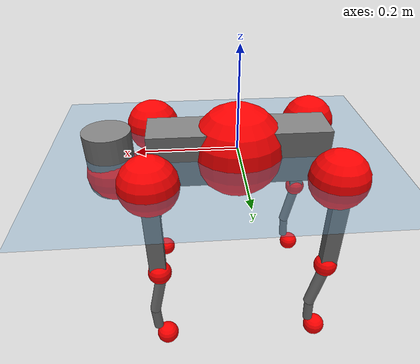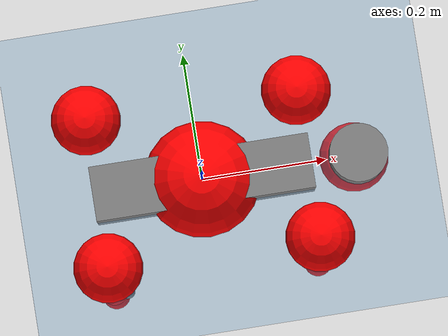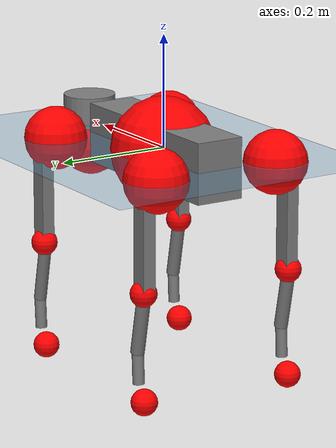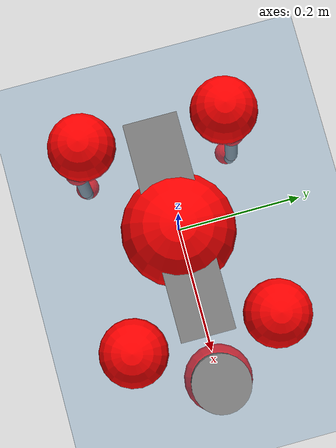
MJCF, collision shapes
<mujoco model="go2">
  <compiler angle="radian" assetdir="assets" balanceinertia="true" inertiafromgeom="false"/>

  <option timestep="0.005" density="1.2" viscosity="2e-05"/>

  <size nkey="1"/>

  <visual>
    <quality shadowsize="8192"/>
    <map shadowclip="0.5"/>
  </visual>

  <default>
    <default class="/">
      <geom contype="0" conaffinity="0" group="1" solref="-1000 -80"/>
      <site size="0.01 0.005 0.005" group="5"/>
      <general forcelimited="true" biastype="affine" gainprm="20" biasprm="0 -20 -0.5"/>
      <default class="go2">
        <joint armature="0.01" damping="0.01" frictionloss="0.2"/>
        <geom condim="1" margin="0.001"/>
        <default class="visual">
          <geom type="mesh" group="2"/>
        </default>
        <default class="collision">
          <geom group="3"/>
          <default class="foot">
            <geom size="0.022 0 0" condim="6" priority="1" friction="0.8 0.02 0.01" solimp="0.015 1 0.022"/>
          </default>
        </default>
        <default class="reward_collision_sphere">
          <geom group="5" rgba="1 0 0 1"/>
        </default>
      </default>
    </default>
  </default>

  <asset>
    <texture type="skybox" colorspace="auto" name="//unnamed_texture_0" builtin="gradient" rgb1="0.95 0.95 0.95" rgb2="0.95 0.95 0.95" width="100" height="600"/>
    <texture type="2d" colorspace="auto" name="texplane" builtin="checker" rgb1="0.345 0.575 0.748" rgb2="0.345 0.575 0.748" markrgb="1 1 1" width="512" height="512"/>
    <material name="MatPlane" class="/" texture="texplane" texuniform="true" texrepeat="2 2" specular="0.9"/>
    <material name="metal" class="/" rgba="0.9 0.95 0.95 1"/>
    <material name="black" class="/" rgba="0 0 0 1"/>
    <material name="white" class="/"/>
    <material name="gray" class="/" rgba="0.671705 0.692426 0.77427 1"/>
    <mesh name="base_0" class="/" file="base_0.obj"/>
    <mesh name="base_1" class="/" file="base_1.obj"/>
    <mesh name="base_2" class="/" file="base_2.obj"/>
    <mesh name="base_3" class="/" file="base_3.obj"/>
    <mesh name="base_4" class="/" file="base_4.obj"/>
    <mesh name="hip_0" class="/" file="hip_0.obj"/>
    <mesh name="hip_1" class="/" file="hip_1.obj"/>
    <mesh name="thigh_0" class="/" file="thigh_0.obj"/>
    <mesh name="thigh_1" class="/" file="thigh_1.obj"/>
    <mesh name="thigh_mirror_0" class="/" file="thigh_mirror_0.obj"/>
    <mesh name="thigh_mirror_1" class="/" file="thigh_mirror_1.obj"/>
    <mesh name="calf_0" class="/" file="calf_0.obj"/>
    <mesh name="calf_1" class="/" file="calf_1.obj"/>
    <mesh name="calf_mirror_0" class="/" file="calf_mirror_0.obj"/>
    <mesh name="calf_mirror_1" class="/" file="calf_mirror_1.obj"/>
    <mesh name="foot" class="/" file="foot.obj"/>
  </asset>

  <worldbody>
    <geom name="floor" class="/" size="100 100 0.125" type="plane" group="0" material="MatPlane"/>
    <light name="toplight_shadow" class="/" pos="0 0 5" dir="0.0990148 0.0990148 -0.990148" type="directional" ambient="0.04 0.04 0.04" diffuse="0.55 0.55 0.55" specular="0.12 0.12 0.12"/>
    <light name="toplight_fill" class="/" pos="0 0 5" dir="0.0990148 0.0990148 -0.990148" type="directional" castshadow="false" ambient="0.04 0.04 0.04" diffuse="0.3 0.3 0.3" specular="0.08 0.08 0.08"/>
    <body name="trunk" childclass="go2" pos="-4.80878e-05 0.000119027 -0.00243926" quat="1 0.00022227 -9.06484e-05 -1.02866e-05">
      <inertial pos="0.0181976 0.00253219 -0.00220921" quat="-0.000437898 0.713231 -0.00164734 0.700927" mass="5.46849" diaginertia="0.0578292 0.106444 0.014059"/>
      <joint name="//unnamed_joint_0" type="free" armature="0" damping="0" frictionloss="0"/>
      <geom name="//unnamed_geom_1" class="visual" material="black" mesh="base_0"/>
      <geom name="//unnamed_geom_2" class="visual" material="black" mesh="base_1"/>
      <geom name="//unnamed_geom_3" class="visual" material="black" mesh="base_2"/>
      <geom name="//unnamed_geom_4" class="visual" material="white" mesh="base_3"/>
      <geom name="//unnamed_geom_5" class="visual" material="gray" mesh="base_4"/>
      <geom name="trunk_1" class="collision" size="0.17556 0.0436333 0.0532" type="box"/>
      <geom name="trunk_2" class="collision" size="0.0466667 0.042" pos="0.251015 0 0.00898727" type="cylinder"/>
      <geom name="trunk_3" class="collision" size="0.0438667" pos="0.258061 0 -0.0539236"/>
      <geom name="//unnamed_geom_9" class="reward_collision_sphere" size="0.0933333"/>
      <geom name="//unnamed_geom_10" class="reward_collision_sphere" size="0.056" pos="0.246611 0 -0.0404427"/>
      <site name="imu" pos="-0.0228523 -0.00780614 0.0389417" size="0.00933333"/>
      <camera name="track" pos="0 -2.04104 0" quat="0.707107 0.707107 0 0" mode="trackcom"/>
      <camera name="ego_camera" pos="0.274795 0 0.0404427" quat="-0.5 -0.5 0.5 0.5"/>
      <body name="FL_hip" pos="0.170155 0.0459472 0.000736625" quat="1 -6.82422e-05 3.48599e-06 -0.000148206">
        <inertial pos="-0.00742073 0.00184472 -0.00161984" quat="0.497253 0.495386 0.505923 0.501373" mass="0.559957" diaginertia="0.000470728 0.000652078 0.000289271"/>
        <joint name="FL_hip_joint" pos="0 0 0" axis="0.999984 0.000133455 0.00559818" stiffness="0.000226135" range="-1.06056 1.05182" armature="0.0102713" damping="0.0131248" frictionloss="0.160989"/>
        <geom name="//unnamed_geom_11" class="visual" material="metal" mesh="hip_0"/>
        <geom name="//unnamed_geom_12" class="visual" material="gray" mesh="hip_1"/>
        <geom name="//unnamed_geom_13" class="collision" size="0.0429333 0.0186667" pos="0 0.0816416 0" quat="0.707107 0.707107 0 0" type="cylinder"/>
        <geom name="//unnamed_geom_14" class="reward_collision_sphere" size="0.056" pos="0 0.0714364 0"/>
        <body name="FL_thigh" pos="-0.00168122 0.0981073 0.00277661" quat="1 -9.38731e-05 0.000187916 5.06466e-05">
          <inertial pos="-0.00437091 -0.0225343 -0.0306915" quat="0.82909 0.0840732 -0.0212509 0.552349" mass="0.894746" diaginertia="0.00314643 0.00644957 0.000481756"/>
          <joint name="FL_thigh_joint" pos="0 0 0" axis="-0.0109401 0.999916 -0.00694638" range="-1.61243 3.50959" armature="0.00905927" damping="0.0119374" frictionloss="0.181373"/>
          <geom name="//unnamed_geom_15" class="visual" material="metal" mesh="thigh_0"/>
          <geom name="//unnamed_geom_16" class="visual" material="gray" mesh="thigh_1"/>
          <geom name="//unnamed_geom_17" class="collision" size="0.0994 0.0114333 0.0158667" pos="0 0 -0.0957144" quat="0.707107 0 0.707107 0" type="box"/>
          <body name="FL_calf" pos="-0.00270514 0.00156594 -0.18906" quat="0.999999 -0.000537278 -0.00032287 -0.00126501">
            <inertial pos="0.00570023 -0.000498971 -0.126455" quat="0.710674 0.00147897 -0.0045266 0.703505" mass="0.189722" diaginertia="0.000789512 0.00158718 3.0105e-05"/>
            <joint name="FL_calf_joint" pos="0 0 0" axis="-0.00861571 0.999946 0.00589432" range="-2.73821 -0.817688" armature="0.00906673" damping="0.0162853" frictionloss="0.16393"/>
            <geom name="//unnamed_geom_18" class="visual" material="gray" mesh="calf_0"/>
            <geom name="//unnamed_geom_19" class="visual" material="black" mesh="calf_1"/>
            <geom name="FL_calf0" class="collision" size="0.0112 0.056" pos="0.00704602 0 -0.0539236" quat="0.994493 0 -0.104807 0" type="cylinder"/>
            <geom name="//unnamed_geom_21" class="collision" size="0.0102667 0.0303333" pos="0.0176151 0 -0.133012" quat="0.999688 0 0.0249974 0" type="cylinder"/>
            <geom name="//unnamed_geom_22" class="visual" pos="0 0 -0.191429" quat="1 0 0 0" material="black" mesh="foot"/>
            <geom name="FL_foot" class="foot" size="0.0187596" pos="-0.00176151 0 -0.191429"/>
            <geom name="//unnamed_geom_24" class="reward_collision_sphere" size="0.0233333"/>
            <geom name="//unnamed_geom_25" class="reward_collision_sphere" size="0.0233333" pos="-0.00176151 0 -0.191429"/>
            <site name="FL_foot" class="foot" pos="-0.00176151 0 -0.191429" size="0.00933333"/>
          </body>
        </body>
      </body>
      <body name="FR_hip" pos="0.171655 -0.0489139 -0.000675563" quat="0.999999 -0.00123845 0.000618663 -0.000400667">
        <inertial pos="-0.00457088 -0.00222329 0.000763233" quat="0.498294 0.50549 0.499234 0.496939" mass="0.529299" diaginertia="0.000453194 0.00062747 0.000281057"/>
        <joint name="FR_hip_joint" pos="0 0 0" axis="0.999999 -0.00150233 0.000116234" stiffness="0.00836053" range="-0.997126 0.995043" armature="0.00911638" damping="0.0151028" frictionloss="0.167214"/>
        <geom name="//unnamed_geom_26" class="visual" pos="0 1.06101e-09 4.55089e-08" quat="4.63268e-05 1 0 0" material="metal" mesh="hip_0"/>
        <geom name="//unnamed_geom_27" class="visual" pos="0 1.72002e-09 -1.12561e-07" quat="4.63268e-05 1 0 0" material="gray" mesh="hip_1"/>
        <geom name="//unnamed_geom_28" class="collision" size="0.0429333 0.0186667" pos="0 -0.0816416 0" quat="0.707107 0.707107 0 0" type="cylinder"/>
        <geom name="//unnamed_geom_29" class="reward_collision_sphere" size="0.056" pos="0 -0.0714364 0"/>
        <body name="FR_thigh" pos="0.00284272 -0.0953675 -6.5119e-05" quat="1 3.01035e-05 1.83034e-05 -3.83488e-06">
          <inertial pos="-0.00316843 0.0238948 -0.0294579" quat="0.552115 -0.0199756 0.0845696 0.829228" mass="0.950371" diaginertia="0.00313702 0.0066031 0.000523663"/>
          <joint name="FR_thigh_joint" pos="0 0 0" axis="-0.000733731 -0.999971 0.00758434" stiffness="0.00106509" range="-3.44433 1.51457" armature="0.00959069" damping="0" frictionloss="0.195534"/>
          <geom name="//unnamed_geom_30" class="visual" material="metal" mesh="thigh_mirror_0"/>
          <geom name="//unnamed_geom_31" class="visual" material="gray" mesh="thigh_mirror_1"/>
          <geom name="//unnamed_geom_32" class="collision" size="0.0994 0.0114333 0.0158667" pos="0 0 -0.0957144" quat="0.707107 0 0.707107 0" type="box"/>
          <body name="FR_calf" pos="0.00262631 -7.35594e-05 -0.189334" quat="1 0.000344704 0.000200797 -0.000345567">
            <inertial pos="0.00534824 0.00171587 -0.124845" quat="0.702267 -0.00513989 -0.000382674 0.711895" mass="0.190292" diaginertia="0.000805679 0.00160513 3.08673e-05"/>
            <joint name="FR_calf_joint" pos="0 0 0" axis="-0.00502983 -0.99998 -0.00380531" range="0.827163 2.66565" armature="0.00922157" damping="0.013457" frictionloss="0.165007"/>
            <geom name="//unnamed_geom_33" class="visual" material="gray" mesh="calf_mirror_0"/>
            <geom name="//unnamed_geom_34" class="visual" material="black" mesh="calf_mirror_1"/>
            <geom name="FR_calf0" class="collision" size="0.0121333 0.056" pos="0.00880753 0 -0.0539236" quat="0.995004 0 -0.0998334 0" type="cylinder"/>
            <geom name="//unnamed_geom_36" class="collision" size="0.0102667 0.0303333" pos="0.0176151 0 -0.133012" quat="0.999688 0 0.0249974 0" type="cylinder"/>
            <geom name="//unnamed_geom_37" class="visual" pos="0 0 -0.191429" quat="1 0 0 0" material="black" mesh="foot"/>
            <geom name="FR_foot" class="foot" size="0.0225834" pos="-0.00176151 0 -0.191429"/>
            <geom name="//unnamed_geom_39" class="reward_collision_sphere" size="0.0233333"/>
            <geom name="//unnamed_geom_40" class="reward_collision_sphere" size="0.0233333" pos="-0.00176151 0 -0.191429"/>
            <site name="FR_foot" class="foot" pos="-0.00176151 0 -0.191429" size="0.00933333"/>
          </body>
        </body>
      </body>
      <body name="RL_hip" pos="-0.1691 0.0503192 -0.000450511" quat="0.999999 0.00102882 0.000244585 -0.000238992">
        <inertial pos="0.00352396 -0.000455898 -0.00110151" quat="0.505137 0.489788 0.502946 0.501987" mass="0.536299" diaginertia="0.000468269 0.000678348 0.000278947"/>
        <joint name="RL_hip_joint" pos="0 0 0" axis="-0.999675 -0.0202724 -0.0154492" range="-1.06652 1.0214" armature="0.00928074" damping="0.000676345" frictionloss="0.199081"/>
        <geom name="//unnamed_geom_41" class="visual" pos="1.56582e-10 0 3.06937e-08" quat="4.63268e-05 0 1 0" material="metal" mesh="hip_0"/>
        <geom name="//unnamed_geom_42" class="visual" pos="2.53838e-10 0 2.72209e-08" quat="4.63268e-05 0 1 0" material="gray" mesh="hip_1"/>
        <geom name="//unnamed_geom_43" class="collision" size="0.0429333 0.0186667" pos="0 0.0816416 0" quat="0.707107 0.707107 0 0" type="cylinder"/>
        <geom name="//unnamed_geom_44" class="reward_collision_sphere" size="0.056" pos="0 0.0714364 0"/>
        <body name="RL_thigh" pos="-0.000106226 0.0944683 -6.52547e-05" quat="1 -0.000167975 0.000770041 0.00011217">
          <inertial pos="-0.00317396 -0.0249127 -0.0294495" quat="0.829438 0.0850419 -0.0185616 0.551775" mass="0.935384" diaginertia="0.00330414 0.00655137 0.000540306"/>
          <joint name="RL_thigh_joint" pos="0 0 0" axis="0.00685388 0.999951 -0.00711845" stiffness="0.0106045" range="-0.528086 4.52959" armature="0.00924702" damping="0.00447024" frictionloss="0.187949"/>
          <geom name="//unnamed_geom_45" class="visual" material="metal" mesh="thigh_0"/>
          <geom name="//unnamed_geom_46" class="visual" material="gray" mesh="thigh_1"/>
          <geom name="//unnamed_geom_47" class="collision" size="0.0994 0.0114333 0.0158667" pos="0 0 -0.0957144" quat="0.707107 0 0.707107 0" type="box"/>
          <body name="RL_calf" pos="0.00279345 9.68163e-06 -0.191906" quat="0.999999 -0.000590322 -0.00108812 0.00076967">
            <inertial pos="0.00819921 -0.000185907 -0.129346" quat="0.71058 0.00143481 -0.00469509 0.703599" mass="0.194459" diaginertia="0.000814412 0.0017205 3.28516e-05"/>
            <joint name="RL_calf_joint" pos="0 0 0" axis="0.000648975 0.99985 0.0173088" range="-2.72308 -0.877969" armature="0.00933593" damping="0.0115507" frictionloss="0.197287"/>
            <geom name="//unnamed_geom_48" class="visual" material="gray" mesh="calf_0"/>
            <geom name="//unnamed_geom_49" class="visual" material="black" mesh="calf_1"/>
            <geom name="RL_calf0" class="collision" size="0.0121333 0.056" pos="0.00880753 0 -0.0539236" quat="0.995004 0 -0.0998334 0" type="cylinder"/>
            <geom name="//unnamed_geom_51" class="collision" size="0.0102667 0.0303333" pos="0.0176151 0 -0.133012" quat="0.999688 0 0.0249974 0" type="cylinder"/>
            <geom name="//unnamed_geom_52" class="visual" pos="0 0 -0.191429" quat="1 0 0 0" material="black" mesh="foot"/>
            <geom name="RL_foot" class="foot" size="0.0164738" pos="-0.00176151 0 -0.191429"/>
            <geom name="//unnamed_geom_54" class="reward_collision_sphere" size="0.0233333"/>
            <geom name="//unnamed_geom_55" class="reward_collision_sphere" size="0.0233333" pos="-0.00176151 0 -0.191429"/>
            <site name="RL_foot" class="foot" pos="-0.00176151 0 -0.191429" size="0.00933333"/>
          </body>
        </body>
      </body>
      <body name="RR_hip" pos="-0.170112 -0.045552 -0.00109946" quat="0.999999 0.000724587 0.00100443 0.000439734">
        <inertial pos="0.00355833 -0.000709125 -0.000597503" quat="0.497409 0.495956 0.491452 0.514866" mass="0.540803" diaginertia="0.0004672 0.000632285 0.000273325"/>
        <joint name="RR_hip_joint" pos="0 0 0" axis="-0.99999 0.00418301 -0.00145372" range="-1.10351 1.02643" armature="0.00791897" damping="0.00276268" frictionloss="0.205424"/>
        <geom name="//unnamed_geom_56" class="visual" pos="-1.51743e-10 1.06101e-09 -1.48152e-08" quat="2.14617e-09 4.63268e-05 4.63268e-05 -1" material="metal" mesh="hip_0"/>
        <geom name="//unnamed_geom_57" class="visual" pos="-2.65807e-10 1.72002e-09 1.39782e-07" quat="2.14617e-09 4.63268e-05 4.63268e-05 -1" material="gray" mesh="hip_1"/>
        <geom name="//unnamed_geom_58" class="collision" size="0.0429333 0.0186667" pos="0 -0.0816416 0" quat="0.707107 0.707107 0 0" type="cylinder"/>
        <geom name="//unnamed_geom_59" class="reward_collision_sphere" size="0.056" pos="0 -0.0714364 0"/>
        <body name="RR_thigh" pos="0.000743061 -0.0981105 -0.00268494" quat="1 6.3379e-05 8.68564e-05 -3.89729e-06">
          <inertial pos="-0.00316997 0.0251086 -0.0277696" quat="0.542976 -0.0173098 0.0773279 0.836001" mass="0.913713" diaginertia="0.00306135 0.00623815 0.000503945"/>
          <joint name="RR_thigh_joint" pos="0 0 0" axis="-0.00385371 -0.999992 -0.000937869" stiffness="0.00987938" range="-4.52876 0.469336" armature="0.0105397" damping="0.0128417" frictionloss="0.183228"/>
          <geom name="//unnamed_geom_60" class="visual" material="metal" mesh="thigh_mirror_0"/>
          <geom name="//unnamed_geom_61" class="visual" material="gray" mesh="thigh_mirror_1"/>
          <geom name="//unnamed_geom_62" class="collision" size="0.0994 0.0114333 0.0158667" pos="0 0 -0.0957144" quat="0.707107 0 0.707107 0" type="box"/>
          <body name="RR_calf" pos="-0.000686062 -0.00302789 -0.1923" quat="0.999999 -0.00133565 -7.25912e-06 0.000240978">
            <inertial pos="0.00647612 0.00013795 -0.127531" quat="0.698684 -0.00438919 -0.00957116 0.715353" mass="0.186519" diaginertia="0.000767102 0.0016032 3.15389e-05"/>
            <joint name="RR_calf_joint" pos="0 0 0" axis="0.00847409 -0.999948 0.00564889" stiffness="0.0108199" range="0.891072 2.78056" armature="0.00924558" damping="0.0160043" frictionloss="0.177221"/>
            <geom name="//unnamed_geom_63" class="visual" material="gray" mesh="calf_mirror_0"/>
            <geom name="//unnamed_geom_64" class="visual" material="black" mesh="calf_mirror_1"/>
            <geom name="RR_calf0" class="collision" size="0.0121333 0.056" pos="0.00880753 0 -0.0539236" quat="0.995004 0 -0.0998334 0" type="cylinder"/>
            <geom name="//unnamed_geom_66" class="collision" size="0.0102667 0.0303333" pos="0.0176151 0 -0.133012" quat="0.999688 0 0.0249974 0" type="cylinder"/>
            <geom name="//unnamed_geom_67" class="visual" pos="0 0 -0.191429" quat="1 0 0 0" material="black" mesh="foot"/>
            <geom name="RR_foot" class="foot" size="0.0199714" pos="-0.00176151 0 -0.191429"/>
            <geom name="//unnamed_geom_69" class="reward_collision_sphere" size="0.0233333"/>
            <geom name="//unnamed_geom_70" class="reward_collision_sphere" size="0.0233333" pos="-0.00176151 0 -0.191429"/>
            <site name="RR_foot" class="foot" pos="-0.00176151 0 -0.191429" size="0.00933333"/>
          </body>
        </body>
      </body>
    </body>
  </worldbody>

  <contact>
    <pair class="/" geom1="floor" geom2="FL_foot" name="//unnamed_contact_0"/>
    <pair class="/" geom1="floor" geom2="FR_foot" name="//unnamed_contact_1"/>
    <pair class="/" geom1="floor" geom2="RL_foot" name="//unnamed_contact_2"/>
    <pair class="/" geom1="floor" geom2="RR_foot" name="//unnamed_contact_3"/>
  </contact>

  <actuator>
    <general name="FL_hip" class="/" joint="FL_hip_joint" forcerange="-20.7124 20.7124" gainprm="19.9998" biasprm="0 -19.9998 -0.472759"/>
    <general name="FL_thigh" class="/" joint="FL_thigh_joint" forcerange="-20.223 20.223" gainprm="19.9998" biasprm="0 -19.9998 -0.472759"/>
    <general name="FL_calf" class="/" joint="FL_calf_joint" forcerange="-41.1583 41.1583" gainprm="19.9998" biasprm="0 -19.9998 -0.472759"/>
    <general name="FR_hip" class="/" joint="FR_hip_joint" forcerange="-22.4608 22.4608" gainprm="19.9998" biasprm="0 -19.9998 -0.472759"/>
    <general name="FR_thigh" class="/" joint="FR_thigh_joint" forcerange="-22.116 22.116" gainprm="19.9998" biasprm="0 -19.9998 -0.472759"/>
    <general name="FR_calf" class="/" joint="FR_calf_joint" forcerange="-40.9215 40.9215" gainprm="19.9998" biasprm="0 -19.9998 -0.472759"/>
    <general name="RL_hip" class="/" joint="RL_hip_joint" forcerange="-23.9688 23.9688" gainprm="19.9998" biasprm="0 -19.9998 -0.472759"/>
    <general name="RL_thigh" class="/" joint="RL_thigh_joint" forcerange="-22.1647 22.1647" gainprm="19.9998" biasprm="0 -19.9998 -0.472759"/>
    <general name="RL_calf" class="/" joint="RL_calf_joint" forcerange="-40.1813 40.1813" gainprm="19.9998" biasprm="0 -19.9998 -0.472759"/>
    <general name="RR_hip" class="/" joint="RR_hip_joint" forcerange="-20.1349 20.1349" gainprm="19.9998" biasprm="0 -19.9998 -0.472759"/>
    <general name="RR_thigh" class="/" joint="RR_thigh_joint" forcerange="-22.9843 22.9843" gainprm="19.9998" biasprm="0 -19.9998 -0.472759"/>
    <general name="RR_calf" class="/" joint="RR_calf_joint" forcerange="-43.9678 43.9678" gainprm="19.9998" biasprm="0 -19.9998 -0.472759"/>
  </actuator>

  <sensor>
    <gyro site="imu" name="imu_angular_velocity"/>
    <velocimeter site="imu" name="imu_linear_velocity"/>
    <framelinvel objtype="site" objname="FL_foot" name="FL_foot_global_linear_velocity"/>
    <framelinvel objtype="site" objname="FR_foot" name="FR_foot_global_linear_velocity"/>
    <framelinvel objtype="site" objname="RL_foot" name="RL_foot_global_linear_velocity"/>
    <framelinvel objtype="site" objname="RR_foot" name="RR_foot_global_linear_velocity"/>
  </sensor>

  <keyframe>
    <key name="home" qpos="0 0 0.325 1 0 0 0 0.1 0.8 -1.5 -0.1 -0.8 1.5 -0.1 0.8 -1.5 0.1 -0.8 1.5"/>
  </keyframe>
</mujoco>
